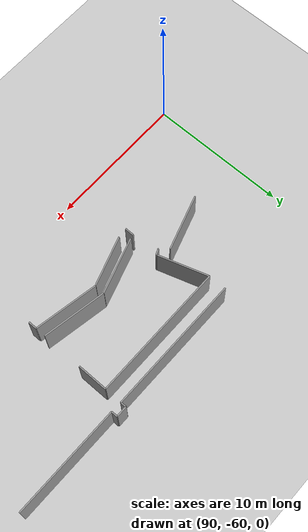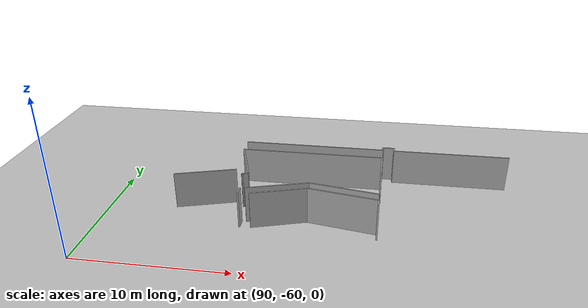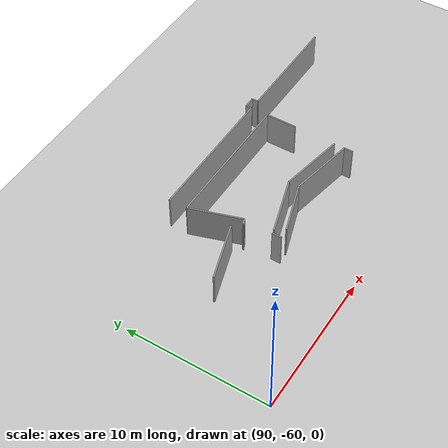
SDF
<sdf version="1.6">
 <world name="default">
  <model name="ground_plane">
   <static>1</static>
   <link name="link">
    <collision name="collision">
     <geometry><plane><normal>0 0 1</normal><size>100 100</size></plane></geometry>
     <surface><friction><ode><mu>100</mu><mu2>50</mu2></ode></friction></surface>
    </collision>
    <visual name="visual">
     <cast_shadows>0</cast_shadows>
     <geometry><plane><normal>0 0 1</normal><size>100 100</size></plane></geometry>
     <material>
      <script><uri>file://media/materials/scripts/gazebo.material</uri><name>Gazebo/Grey</name></script>
     </material>
    </visual>
   </link>
  </model>
  <model name="0510035519_A_40_1_102">
   <static>1</static>
   <link name="Wall_1010">
    <collision name="Wall_1010_Collision">
     <geometry><box><size>4.12849742765 0.1 2.5</size></box></geometry>
     <pose>2.06424871382 0 1.25 0 0 0</pose>
    </collision>
    <visual name="Wall_1010_Visual">
     <pose>2.06424871382 0 1.25 0 0 0</pose>
     <geometry><box><size>4.12849742765 0.1 2.5</size></box></geometry>
     <material>
      <script><uri>file://media/materials/scripts/gazebo.material</uri><name>Gazebo/Grey</name></script>
      <ambient>1 1 1 1</ambient>
     </material>
    </visual>
    <pose>214.993010548 -120.803914093 0 0 0 -2.83335321187</pose>
   </link>
   <link name="Wall_1013">
    <collision name="Wall_1013_Collision">
     <geometry><box><size>3.63874498265 0.1 2.5</size></box></geometry>
     <pose>1.81937249133 0 1.25 0 0 0</pose>
    </collision>
    <visual name="Wall_1013_Visual">
     <pose>1.81937249133 0 1.25 0 0 0</pose>
     <geometry><box><size>3.63874498265 0.1 2.5</size></box></geometry>
     <material>
      <script><uri>file://media/materials/scripts/gazebo.material</uri><name>Gazebo/Grey</name></script>
      <ambient>1 1 1 1</ambient>
     </material>
    </visual>
    <pose>215.851315288 -121.148811793 0 0 0 1.87739384828</pose>
   </link>
   <link name="Wall_1014">
    <collision name="Wall_1014_Collision">
     <geometry><box><size>9.78091244123 0.1 2.5</size></box></geometry>
     <pose>4.89045622061 0 1.25 0 0 0</pose>
    </collision>
    <visual name="Wall_1014_Visual">
     <pose>4.89045622061 0 1.25 0 0 0</pose>
     <geometry><box><size>9.78091244123 0.1 2.5</size></box></geometry>
     <material>
      <script><uri>file://media/materials/scripts/gazebo.material</uri><name>Gazebo/Grey</name></script>
      <ambient>1 1 1 1</ambient>
     </material>
    </visual>
    <pose>214.753081713 -117.679756005 0 0 0 0.0</pose>
   </link>
   <link name="Wall_1015">
    <collision name="Wall_1015_Collision">
     <geometry><box><size>2.17308425467 0.1 2.5</size></box></geometry>
     <pose>1.08654212734 0 1.25 0 0 0</pose>
    </collision>
    <visual name="Wall_1015_Visual">
     <pose>1.08654212734 0 1.25 0 0 0</pose>
     <geometry><box><size>2.17308425467 0.1 2.5</size></box></geometry>
     <material>
      <script><uri>file://media/materials/scripts/gazebo.material</uri><name>Gazebo/Grey</name></script>
      <ambient>1 1 1 1</ambient>
     </material>
    </visual>
    <pose>224.533994154 -117.679756005 0 0 0 -1.57079632679</pose>
   </link>
   <link name="Wall_1016">
    <collision name="Wall_1016_Collision">
     <geometry><box><size>4.57664809492 0.1 2.5</size></box></geometry>
     <pose>2.28832404746 0 1.25 0 0 0</pose>
    </collision>
    <visual name="Wall_1016_Visual">
     <pose>2.28832404746 0 1.25 0 0 0</pose>
     <geometry><box><size>4.57664809492 0.1 2.5</size></box></geometry>
     <material>
      <script><uri>file://media/materials/scripts/gazebo.material</uri><name>Gazebo/Grey</name></script>
      <ambient>1 1 1 1</ambient>
     </material>
    </visual>
    <pose>224.533994154 -122.805184903 0 0 0 2.95977215819</pose>
   </link>
   <link name="Wall_1017">
    <collision name="Wall_1017_Collision">
     <geometry><box><size>4.11828037207 0.1 2.5</size></box></geometry>
     <pose>2.05914018604 0 1.25 0 0 0</pose>
    </collision>
    <visual name="Wall_1017_Visual">
     <pose>2.05914018604 0 1.25 0 0 0</pose>
     <geometry><box><size>4.11828037207 0.1 2.5</size></box></geometry>
     <material>
      <script><uri>file://media/materials/scripts/gazebo.material</uri><name>Gazebo/Grey</name></script>
      <ambient>1 1 1 1</ambient>
     </material>
    </visual>
    <pose>220.032786885 -121.977633753 0 0 0 -2.83812976762</pose>
   </link>
   <link name="Wall_1018">
    <collision name="Wall_1018_Collision">
     <geometry><box><size>0.0724196417144 0.1 2.5</size></box></geometry>
     <pose>0.0362098208572 0 1.25 0 0 0</pose>
    </collision>
    <visual name="Wall_1018_Visual">
     <pose>0.0362098208572 0 1.25 0 0 0</pose>
     <geometry><box><size>0.0724196417144 0.1 2.5</size></box></geometry>
     <material>
      <script><uri>file://media/materials/scripts/gazebo.material</uri><name>Gazebo/Grey</name></script>
      <ambient>1 1 1 1</ambient>
     </material>
    </visual>
    <pose>215.523954759 -121.436268903 0 0 0 1.97476645435</pose>
   </link>
   <link name="Wall_1019">
    <collision name="Wall_1019_Collision">
     <geometry><box><size>0.40747360914 0.1 2.5</size></box></geometry>
     <pose>0.20373680457 0 1.25 0 0 0</pose>
    </collision>
    <visual name="Wall_1019_Visual">
     <pose>0.20373680457 0 1.25 0 0 0</pose>
     <geometry><box><size>0.40747360914 0.1 2.5</size></box></geometry>
     <material>
      <script><uri>file://media/materials/scripts/gazebo.material</uri><name>Gazebo/Grey</name></script>
      <ambient>1 1 1 1</ambient>
     </material>
    </visual>
    <pose>215.495488626 -121.369678485 0 0 0 0.369502535386</pose>
   </link>
   <link name="Wall_1020">
    <collision name="Wall_1020_Collision">
     <geometry><box><size>0.0775610345389 0.1 2.5</size></box></geometry>
     <pose>0.0387805172694 0 1.25 0 0 0</pose>
    </collision>
    <visual name="Wall_1020_Visual">
     <pose>0.0387805172694 0 1.25 0 0 0</pose>
     <geometry><box><size>0.0775610345389 0.1 2.5</size></box></geometry>
     <material>
      <script><uri>file://media/materials/scripts/gazebo.material</uri><name>Gazebo/Grey</name></script>
      <ambient>1 1 1 1</ambient>
     </material>
    </visual>
    <pose>215.875460668 -121.222518744 0 0 0 1.88736558041</pose>
   </link>
   <link name="Wall_1025">
    <collision name="Wall_1025_Collision">
     <geometry><box><size>3.6694555709 0.1 2.5</size></box></geometry>
     <pose>1.83472778545 0 1.25 0 0 0</pose>
    </collision>
    <visual name="Wall_1025_Visual">
     <pose>1.83472778545 0 1.25 0 0 0</pose>
     <geometry><box><size>3.6694555709 0.1 2.5</size></box></geometry>
     <material>
      <script><uri>file://media/materials/scripts/gazebo.material</uri><name>Gazebo/Grey</name></script>
      <ambient>1 1 1 1</ambient>
     </material>
    </visual>
    <pose>216.522048545 -123.848011183 0 0 0 0.318136508145</pose>
   </link>
   <link name="Wall_1026">
    <collision name="Wall_1026_Collision">
     <geometry><box><size>4.58891072125 0.1 2.5</size></box></geometry>
     <pose>2.29445536063 0 1.25 0 0 0</pose>
    </collision>
    <visual name="Wall_1026_Visual">
     <pose>2.29445536063 0 1.25 0 0 0</pose>
     <geometry><box><size>4.58891072125 0.1 2.5</size></box></geometry>
     <material>
      <script><uri>file://media/materials/scripts/gazebo.material</uri><name>Gazebo/Grey</name></script>
      <ambient>1 1 1 1</ambient>
     </material>
    </visual>
    <pose>220.007370695 -122.700216038 0 0 0 -0.184089083301</pose>
   </link>
   <link name="Wall_1027">
    <collision name="Wall_1027_Collision">
     <geometry><box><size>0.628288219596 0.1 2.5</size></box></geometry>
     <pose>0.314144109798 0 1.25 0 0 0</pose>
    </collision>
    <visual name="Wall_1027_Visual">
     <pose>0.314144109798 0 1.25 0 0 0</pose>
     <geometry><box><size>0.628288219596 0.1 2.5</size></box></geometry>
     <material>
      <script><uri>file://media/materials/scripts/gazebo.material</uri><name>Gazebo/Grey</name></script>
      <ambient>1 1 1 1</ambient>
     </material>
    </visual>
    <pose>224.51874444 -123.540221121 0 0 0 -1.57079632679</pose>
   </link>
   <link name="Wall_1055">
    <collision name="Wall_1055_Collision">
     <geometry><box><size>0.67200406659 0.1 2.5</size></box></geometry>
     <pose>0.336002033295 0 1.25 0 0 0</pose>
    </collision>
    <visual name="Wall_1055_Visual">
     <pose>0.336002033295 0 1.25 0 0 0</pose>
     <geometry><box><size>0.67200406659 0.1 2.5</size></box></geometry>
     <material>
      <script><uri>file://media/materials/scripts/gazebo.material</uri><name>Gazebo/Grey</name></script>
      <ambient>1 1 1 1</ambient>
     </material>
    </visual>
    <pose>215.812936841 -123.246664125 0 0 0 -1.57079632679</pose>
   </link>
   <link name="Wall_1084">
    <collision name="Wall_1084_Collision">
     <geometry><box><size>7.89935188715 0.1 2.5</size></box></geometry>
     <pose>3.94967594358 0 1.25 0 0 0</pose>
    </collision>
    <visual name="Wall_1084_Visual">
     <pose>3.94967594358 0 1.25 0 0 0</pose>
     <geometry><box><size>7.89935188715 0.1 2.5</size></box></geometry>
     <material>
      <script><uri>file://media/materials/scripts/gazebo.material</uri><name>Gazebo/Grey</name></script>
      <ambient>1 1 1 1</ambient>
     </material>
    </visual>
    <pose>233.218706316 -116.450629051 0 0 0 3.14159265359</pose>
   </link>
   <link name="Wall_1085">
    <collision name="Wall_1085_Collision">
     <geometry><box><size>0.444275003177 0.1 2.5</size></box></geometry>
     <pose>0.222137501589 0 1.25 0 0 0</pose>
    </collision>
    <visual name="Wall_1085_Visual">
     <pose>0.222137501589 0 1.25 0 0 0</pose>
     <geometry><box><size>0.444275003177 0.1 2.5</size></box></geometry>
     <material>
      <script><uri>file://media/materials/scripts/gazebo.material</uri><name>Gazebo/Grey</name></script>
      <ambient>1 1 1 1</ambient>
     </material>
    </visual>
    <pose>225.319354429 -116.450629051 0 0 0 1.57079632679</pose>
   </link>
   <link name="Wall_1086">
    <collision name="Wall_1086_Collision">
     <geometry><box><size>0.782818655484 0.1 2.5</size></box></geometry>
     <pose>0.391409327742 0 1.25 0 0 0</pose>
    </collision>
    <visual name="Wall_1086_Visual">
     <pose>0.391409327742 0 1.25 0 0 0</pose>
     <geometry><box><size>0.782818655484 0.1 2.5</size></box></geometry>
     <material>
      <script><uri>file://media/materials/scripts/gazebo.material</uri><name>Gazebo/Grey</name></script>
      <ambient>1 1 1 1</ambient>
     </material>
    </visual>
    <pose>225.319354429 -116.006354048 0 0 0 3.14159265359</pose>
   </link>
   <link name="Wall_1087">
    <collision name="Wall_1087_Collision">
     <geometry><box><size>0.408692337019 0.1 2.5</size></box></geometry>
     <pose>0.204346168509 0 1.25 0 0 0</pose>
    </collision>
    <visual name="Wall_1087_Visual">
     <pose>0.204346168509 0 1.25 0 0 0</pose>
     <geometry><box><size>0.408692337019 0.1 2.5</size></box></geometry>
     <material>
      <script><uri>file://media/materials/scripts/gazebo.material</uri><name>Gazebo/Grey</name></script>
      <ambient>1 1 1 1</ambient>
     </material>
    </visual>
    <pose>224.536535773 -116.006354048 0 0 0 -1.57079632679</pose>
   </link>
   <link name="Wall_1088">
    <collision name="Wall_1088_Collision">
     <geometry><box><size>9.82386580252 0.1 2.5</size></box></geometry>
     <pose>4.91193290126 0 1.25 0 0 0</pose>
    </collision>
    <visual name="Wall_1088_Visual">
     <pose>4.91193290126 0 1.25 0 0 0</pose>
     <geometry><box><size>9.82386580252 0.1 2.5</size></box></geometry>
     <material>
      <script><uri>file://media/materials/scripts/gazebo.material</uri><name>Gazebo/Grey</name></script>
      <ambient>1 1 1 1</ambient>
     </material>
    </visual>
    <pose>224.536535773 -116.415046385 0 0 0 3.14159265359</pose>
   </link>
   <pose>-116.6 68.721527513 0 0 0 0</pose>
  </model>
 </world>
</sdf>
